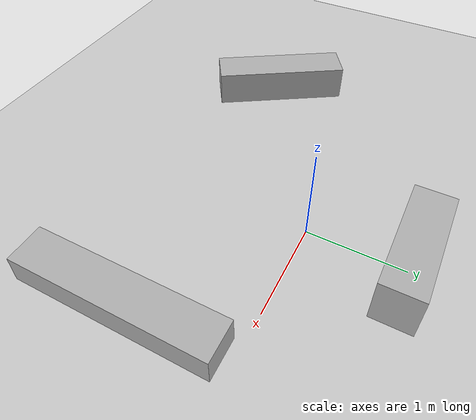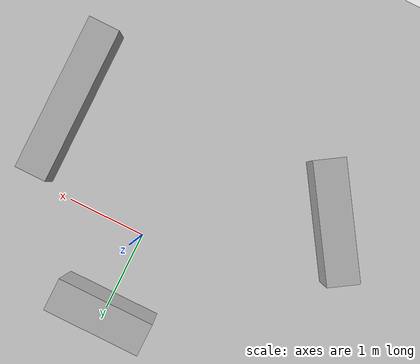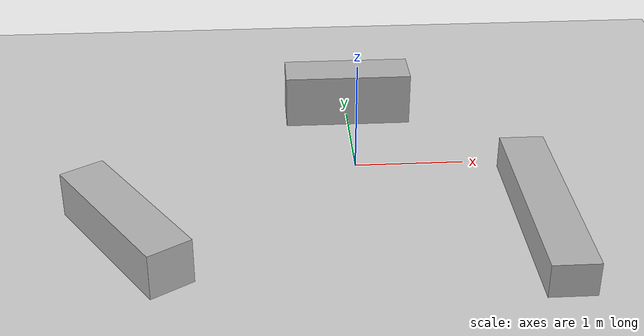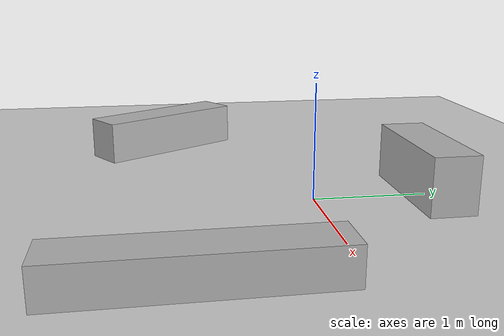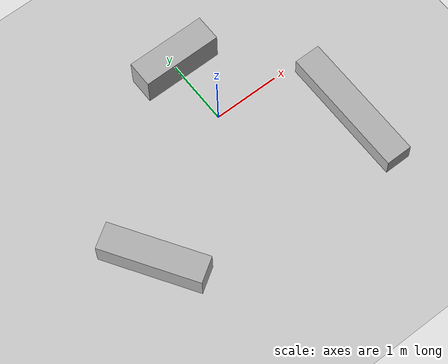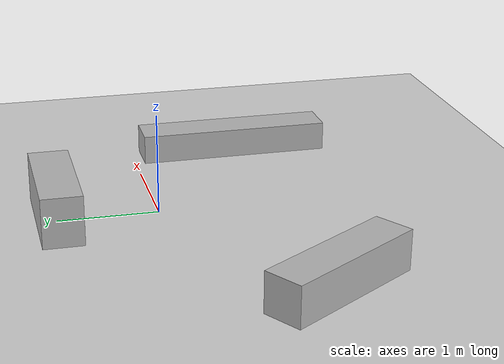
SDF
<?xml version="1.0"?>
<sdf version="1.6">
  <world name="default">

    <include>
      <uri>model://ground_plane</uri>
    </include>

    <include>
      <uri>model://sun</uri>
    </include>

    <model name="wall_0">
      <static>true</static>
      <pose>0 1.0 0.25 0 0 0</pose>

      <link name="wall_link">
        <collision name="collision">
          <geometry>
            <box>
              <size>1.2 0.4 0.5</size>
            </box>
          </geometry>
        </collision>

        <visual name="visual">
          <geometry>
            <box>
              <size>1.2 0.4 0.5</size>
            </box>
          </geometry>
          <material>
            <ambient>0.7 0.7 0.7 1</ambient>
            <diffuse>0.7 0.7 0.7 1</diffuse>
          </material>
        </visual>
      </link>
    </model>

    <model name="wall_1">
      <static>true</static>
      <pose>1.5 -1.1 0.15 0 0 1.5708</pose>

      <link name="wall_link">
        <collision name="collision">
          <geometry>
            <box>
              <size>2.0 0.4 0.3</size>
            </box>
          </geometry>
        </collision>

        <visual name="visual">
          <geometry>
            <box>
              <size>2.0 0.4 0.3</size>
            </box>
          </geometry>
          <material>
            <ambient>0.7 0.7 0.7 1</ambient>
            <diffuse>0.7 0.7 0.7 1</diffuse>
          </material>
        </visual>
      </link>
    </model>

    <model name="wall_2">
      <static>true</static>
      <pose>-2 -1.2 0.2 0 0 -1.0</pose>

      <link name="wall_link">
        <collision name="collision">
          <geometry>
            <box>
              <size>1.5 0.4 0.4</size>
            </box>
          </geometry>
        </collision>

        <visual name="visual">
          <geometry>
            <box>
              <size>1.5 0.4 0.4</size>
            </box>
          </geometry>
          <material>
            <ambient>0.7 0.7 0.7 1</ambient>
            <diffuse>0.7 0.7 0.7 1</diffuse>
          </material>
        </visual>
      </link>
    </model>

    <scene>
      <shadows>false</shadows>
    </scene>

    <gui fullscreen='0'>
      <camera name='user_camera'>
        <pose frame=''>0.319654 -0.235002 9.29441 0 1.5138 0.009599</pose>
        <view_controller>orbit</view_controller>
        <projection_type>perspective</projection_type>
      </camera>
    </gui>

    <physics type="ode">
      <real_time_update_rate>1000.0</real_time_update_rate>
      <max_step_size>0.001</max_step_size>
      <real_time_factor>1</real_time_factor>
      <ode>
        <solver>
          <type>quick</type>
          <iters>150</iters>
          <precon_iters>0</precon_iters>
          <sor>1.400000</sor>
          <use_dynamic_moi_rescaling>1</use_dynamic_moi_rescaling>
        </solver>
        <constraints>
          <cfm>0.00001</cfm>
          <erp>0.2</erp>
          <contact_max_correcting_vel>2000.000000</contact_max_correcting_vel>
          <contact_surface_layer>0.01000</contact_surface_layer>
        </constraints>
      </ode>
    </physics>

  </world>
</sdf>
